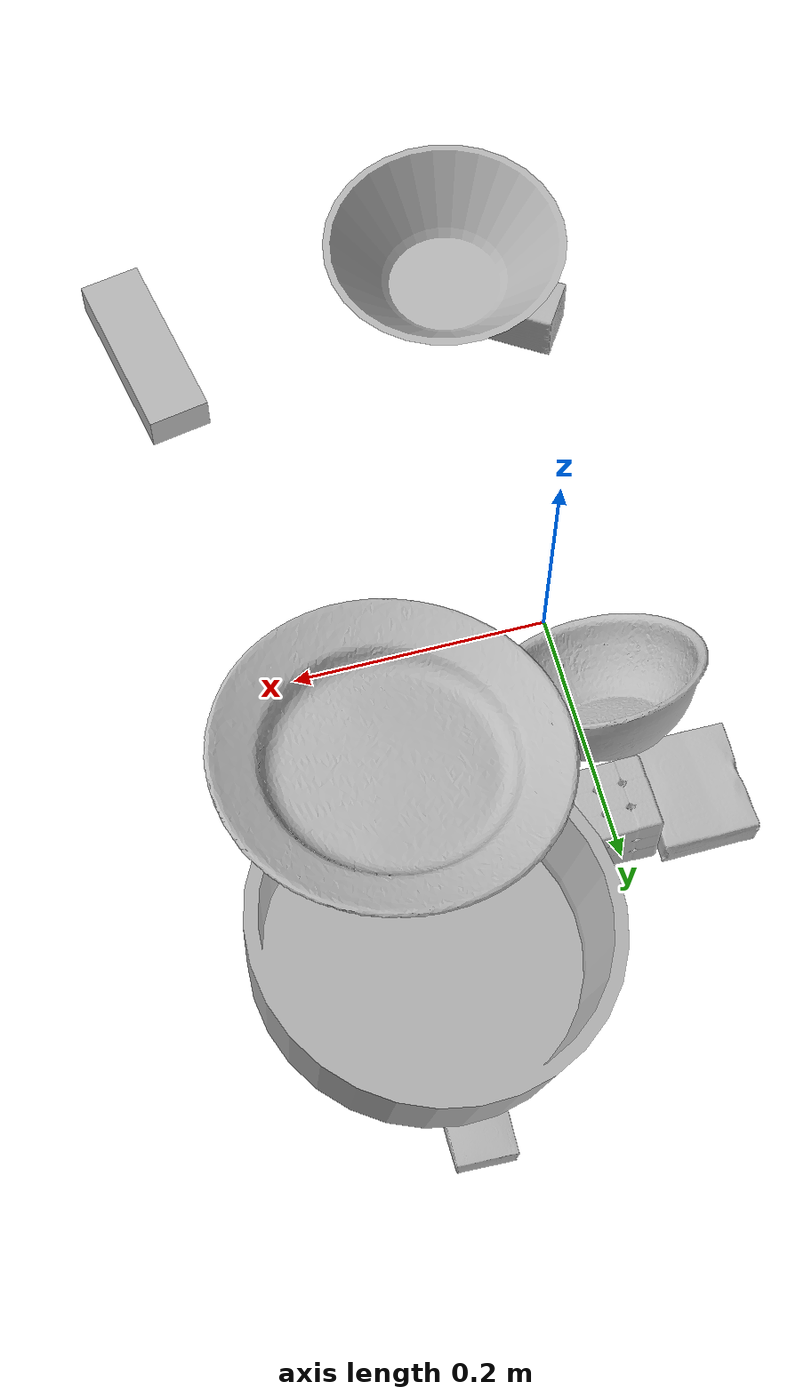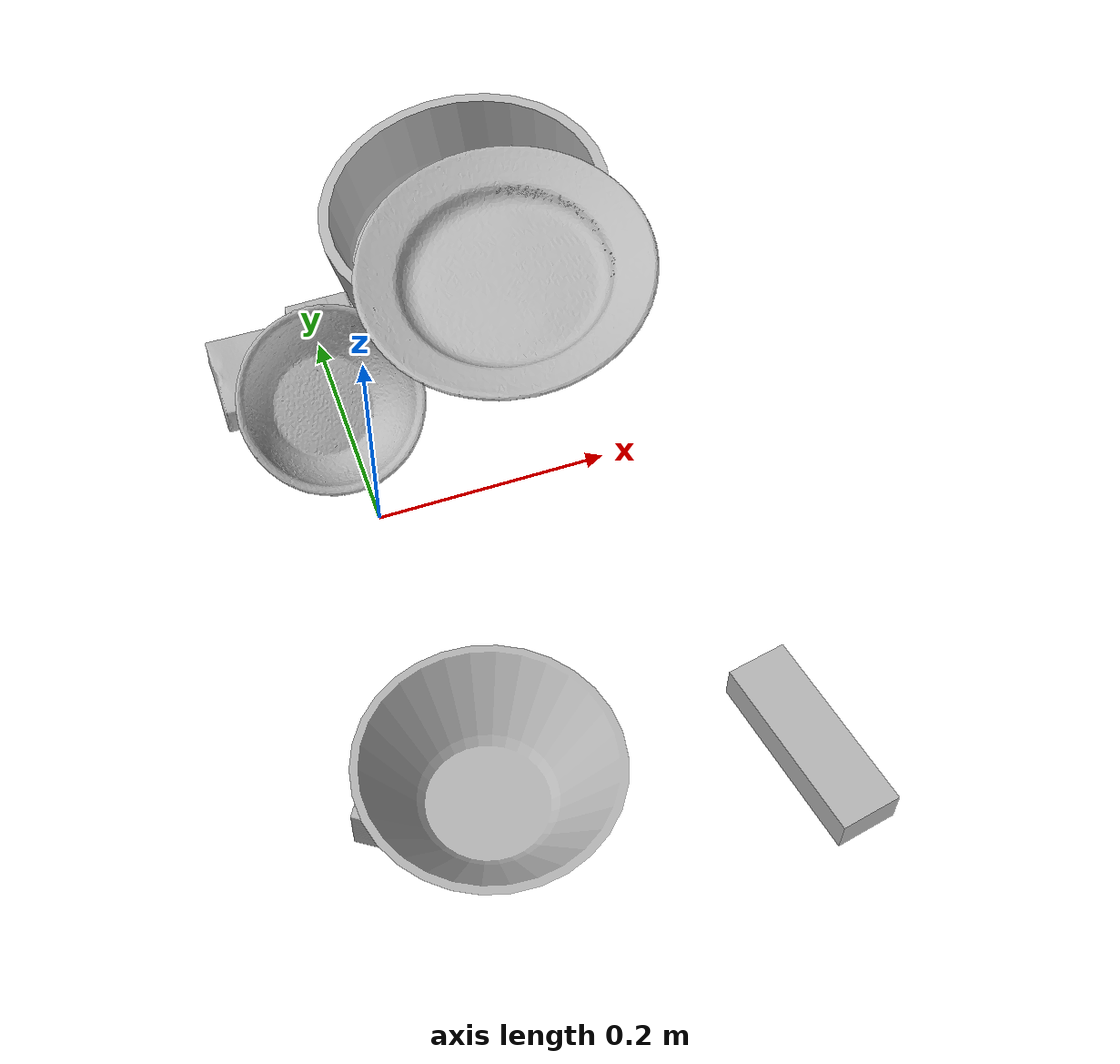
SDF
<sdf version="1.4">
  <world name="default">
    <light name="light1" type="point">
      <pose>0 0 1 0 0 0</pose>
      <diffuse>3 3 3 1</diffuse>
      <specular>3 3 3 1</specular>
    </light>
    <light name="light2" type="point">
      <pose>0 0.5 2 0 0 0</pose>
      <diffuse>1 1 1 1</diffuse>
      <specular>1 1 1 1</specular>
    </light>
    <light name="light3" type="point">
      <pose>0 0.5 2 0 0 0</pose>
      <diffuse>3 3 3 1</diffuse>
      <specular>3 3 3 1</specular>
    </light>
    <scene>
      <ambient>0.7 0.7 0.7</ambient>
    </scene>
    <model name="box1">
      <link name="link_box1">
        <collision name="default">
          <geometry>
            <mesh>
              <uri>model://gelatin_box/collision_meshes/collision.obj</uri>
              <scale>1.0 1.0 1.0</scale>
            </mesh>
          </geometry>
          <surface>
            <friction>
              <ode>
                <mu>0.5</mu>
                <mu2>0.5</mu2>
              </ode>
            </friction>
          <contact>
        <ode>
            <max_vel>0</max_vel>
            <min_depth>0.0001</min_depth>
            <kp>1e8</kp>
        </ode>
    </contact></surface>
        </collision>
        <visual name="default">
          <geometry>
            <mesh>
              <uri>model://gelatin_box/visual_meshes/visual.dae</uri>
              <scale>1.0 1.0 1.0</scale>
            </mesh>
          </geometry>
        </visual>
        <inertial>
          <mass>0.1979130208492279</mass>
          <pose>0.0004319618456065655 0.00011156871914863586 -0.0003640321083366871 -0.0010503722055948273 -0.004755818222760974 0.016440559471883928</pose>
          <inertia>
            <ixx>0.00013971045</ixx>
            <iyy>9.9794444e-05</iyy>
            <izz>0.00021267045</izz>
            <ixy>0</ixy>
            <ixz>0</ixz>
            <iyz>0</iyz>
          </inertia>
        </inertial>
      </link>
      <pose>-0.06312017887830734 0.17029017210006714 0.01516831573098898 0.005597386452177119 -0.007304525713996629 3.134286964338531</pose>
    </model>
    <model name="box11">
      <link name="link_box11">
        <collision name="default">
          <geometry>
            <mesh>
              <uri>model://sugar_box/collision_meshes/collision.obj</uri>
              <scale>0.5 0.5 0.5</scale>
            </mesh>
          </geometry>
          <surface>
            <friction>
              <ode>
                <mu>0.5</mu>
                <mu2>0.5</mu2>
              </ode>
            </friction>
          <contact>
        <ode>
            <max_vel>0</max_vel>
            <min_depth>0.0001</min_depth>
            <kp>1e8</kp>
        </ode>
    </contact></surface>
        </collision>
        <visual name="default">
          <geometry>
            <mesh>
              <uri>model://sugar_box/visual_meshes/visual.dae</uri>
              <scale>0.5 0.5 0.5</scale>
            </mesh>
          </geometry>
        </visual>
        <inertial>
          <mass>0.10992158949375153</mass>
          <pose>0.0005171863595023751 1.924554817378521e-05 -0.00018182402709499002 -0.00040462650409139634 0.0010506636387973133 0.002615378555960767</pose>
          <inertia>
            <ixx>2.2896586e-05</ixx>
            <iyy>7.400649e-05</iyy>
            <izz>8.8594585e-05</izz>
            <ixy>0</ixy>
            <ixz>0</ixz>
            <iyz>0</iyz>
          </inertia>
        </inertial>
      </link>
      <pose>0.20066407322883606 0.15246936678886414 0.012409115210175514 -0.09475802878611687 -0.003541895415815933 2.0992422371241783</pose>
    </model>
    <model name="box2">
      <link name="link_box2">
        <collision name="default">
          <geometry>
            <mesh>
              <uri>model://jenga/collision_meshes/collision.obj</uri>
              <scale>1.0 1.0 1.0</scale>
            </mesh>
          </geometry>
          <surface>
            <friction>
              <ode>
                <mu>0.5</mu>
                <mu2>0.5</mu2>
              </ode>
            </friction>
          <contact>
        <ode>
            <max_vel>0</max_vel>
            <min_depth>0.0001</min_depth>
            <kp>1e8</kp>
        </ode>
    </contact></surface>
        </collision>
        <visual name="default">
          <geometry>
            <mesh>
              <uri>model://jenga/visual_meshes/visual.dae</uri>
              <scale>1.0 1.0 1.0</scale>
            </mesh>
          </geometry>
        </visual>
        <inertial>
          <mass>0.12651896476745605</mass>
          <pose>-2.502855807051674e-07 -0.00010250010382151231 -4.0923401684267446e-05 0.0 -7.34215461761844e-07 0.0</pose>
          <inertia>
            <ixx>3.5010868e-05</ixx>
            <iyy>0.00023723267</iyy>
            <izz>0.00025326604</izz>
            <ixy>0</ixy>
            <ixz>0</ixz>
            <iyz>0</iyz>
          </inertia>
        </inertial>
      </link>
      <pose>0.25058600306510925 -0.3163380026817322 0.014999995008111 9.362299695614797e-09 5.651032022198213e-09 1.7638743426623114</pose>
    </model>
    <model name="box21">
      <link name="link_box21">
        <collision name="default">
          <geometry>
            <mesh>
              <uri>model://wood_block/collision_meshes/collision.obj</uri>
              <scale>0.5 0.5 0.5</scale>
            </mesh>
          </geometry>
          <surface>
            <friction>
              <ode>
                <mu>0.5</mu>
                <mu2>0.5</mu2>
              </ode>
            </friction>
          <contact>
        <ode>
            <max_vel>0</max_vel>
            <min_depth>0.0001</min_depth>
            <kp>1e8</kp>
        </ode>
    </contact></surface>
        </collision>
        <visual name="default">
          <geometry>
            <mesh>
              <uri>model://wood_block/visual_meshes/visual.dae</uri>
              <scale>0.5 0.5 0.5</scale>
            </mesh>
          </geometry>
        </visual>
        <inertial>
          <mass>0.17952100932598114</mass>
          <pose>-2.906657982748584e-06 -0.00028540476341731846 0.00013204291462898254 -0.052208472466385096 -0.005192695659959234 -0.0068613786899108485</pose>
          <inertia>
            <ixx>6.0056565e-05</ixx>
            <iyy>0.0001897187</iyy>
            <izz>0.00018900905</izz>
            <ixy>0</ixy>
            <ixz>0</ixz>
            <iyz>0</iyz>
          </inertia>
        </inertial>
      </link>
      <pose>-0.04441297426819801 -0.2868976891040802 0.02282291278243065 -8.574182677968239e-05 -2.2454434093240427e-05 2.561551817960254</pose>
    </model>
    <model name="box3">
      <link name="link_box3">
        <collision name="default">
          <geometry>
            <mesh>
              <uri>model://rubiks_cube/collision_meshes/collision.obj</uri>
              <scale>1.0 1.0 1.0</scale>
            </mesh>
          </geometry>
          <surface>
            <friction>
              <ode>
                <mu>0.5</mu>
                <mu2>0.5</mu2>
              </ode>
            </friction>
          <contact>
        <ode>
            <max_vel>0</max_vel>
            <min_depth>0.0001</min_depth>
            <kp>1e8</kp>
        </ode>
    </contact></surface>
        </collision>
        <visual name="default">
          <geometry>
            <mesh>
              <uri>model://rubiks_cube/visual_meshes/visual.dae</uri>
              <scale>1.0 1.0 1.0</scale>
            </mesh>
          </geometry>
        </visual>
        <inertial>
          <mass>0.2539031207561493</mass>
          <pose>2.6721041649580002e-05 5.2569666877388954e-05 -7.264316082000732e-06 -0.05467208428881645 -0.09814040742269707 -0.034455380154792534</pose>
          <inertia>
            <ixx>0.00014029852</ixx>
            <iyy>0.00013964424</iyy>
            <izz>0.00014146113</izz>
            <ixy>0</ixy>
            <ixz>0</ixz>
            <iyz>0</iyz>
          </inertia>
        </inertial>
      </link>
      <pose>0.0035609377082437277 0.17714577913284302 0.028678983449935913 -6.399213416514088e-06 -1.9425732531613116e-06 0.011850830239096315</pose>
    </model>
    <model name="box31">
      <link name="link_box31">
        <collision name="default">
          <geometry>
            <mesh>
              <uri>model://pudding_box/collision_meshes/collision.obj</uri>
              <scale>0.5 0.5 0.5</scale>
            </mesh>
          </geometry>
          <surface>
            <friction>
              <ode>
                <mu>0.5</mu>
                <mu2>0.5</mu2>
              </ode>
            </friction>
          <contact>
        <ode>
            <max_vel>0</max_vel>
            <min_depth>0.0001</min_depth>
            <kp>1e8</kp>
        </ode>
    </contact></surface>
        </collision>
        <visual name="default">
          <geometry>
            <mesh>
              <uri>model://pudding_box/visual_meshes/visual.dae</uri>
              <scale>0.5 0.5 0.5</scale>
            </mesh>
          </geometry>
        </visual>
        <inertial>
          <mass>0.030597222968935966</mass>
          <pose>0.00024474109522998333 0.00040339428232982755 -0.00025944135268218815 0.005213101792545572 -0.006603798718575614 0.020079825159656634</pose>
          <inertia>
            <ixx>8.6471455e-06</ixx>
            <iyy>5.8178607e-06</iyy>
            <izz>1.2769769e-05</izz>
            <ixy>0</ixy>
            <ixz>0</ixz>
            <iyz>0</iyz>
          </inertia>
        </inertial>
      </link>
      <pose>0.1572554111480713 0.367633581161499 0.010234885849058628 0.012223968545978481 -0.043358080053953404 -0.025439426348512477</pose>
    </model>
    <model name="plate1">
      <link name="link_plate1">
        <collision name="default">
          <geometry>
            <mesh>
              <uri>model://pan_tefal/collision_meshes/collision.obj</uri>
              <scale>1.0 1.0 1.0</scale>
            </mesh>
          </geometry>
          <surface>
            <friction>
              <ode>
                <mu>0.5</mu>
                <mu2>0.5</mu2>
              </ode>
            </friction>
          <contact>
        <ode>
            <max_vel>0</max_vel>
            <min_depth>0.0001</min_depth>
            <kp>1e8</kp>
        </ode>
    </contact></surface>
        </collision>
        <visual name="default">
          <geometry>
            <mesh>
              <uri>model://pan_tefal/visual_meshes/visual.dae</uri>
              <scale>1.0 1.0 1.0</scale>
            </mesh>
          </geometry>
        </visual>
        <inertial>
          <mass>1.6321053504943848</mass>
          <pose>-0.00018001697026193142 3.279276279499754e-05 -0.00851493887603283 0.0008190355512640809 -0.00033013448733331557 -0.33186498661790637</pose>
          <inertia>
            <ixx>0.011266344</ixx>
            <iyy>0.011338978</iyy>
            <izz>0.02073917</izz>
            <ixy>0</ixy>
            <ixz>0</ixz>
            <iyz>0</iyz>
          </inertia>
        </inertial>
      </link>
      <pose>0.15839286148548126 0.24463769793510437 0.058384787291288376 0.0171288458898958 -0.12943546460463543 -0.15655035814152465</pose>
    </model>
    <model name="bowl1">
      <link name="link_bowl1">
        <collision name="default">
          <geometry>
            <mesh>
              <uri>model://bowl/collision_meshes/collision.obj</uri>
              <scale>1.0 1.0 1.0</scale>
            </mesh>
          </geometry>
          <surface>
            <friction>
              <ode>
                <mu>0.5</mu>
                <mu2>0.5</mu2>
              </ode>
            </friction>
          <contact>
        <ode>
            <max_vel>0</max_vel>
            <min_depth>0.0001</min_depth>
            <kp>1e8</kp>
        </ode>
    </contact></surface>
        </collision>
        <visual name="default">
          <geometry>
            <mesh>
              <uri>model://bowl/visual_meshes/visual.dae</uri>
              <scale>1.0 1.0 1.0</scale>
            </mesh>
          </geometry>
        </visual>
        <inertial>
          <mass>0.08853479474782944</mass>
          <pose>0.0002044534485321492 -0.0010302085429430008 -0.0008042657864280045 -0.015764086220495594 0.014546762208611713 0.7140398935341641</pose>
          <inertia>
            <ixx>0.00020337135</ixx>
            <iyy>0.00019882726</iyy>
            <izz>0.00034214073</izz>
            <ixy>0</ixy>
            <ixz>0</ixz>
            <iyz>0</iyz>
          </inertia>
        </inertial>
      </link>
      <pose>-0.015449261292815208 0.09510339796543121 0.04865076765418053 -0.4578011833043332 0.4321830872671943 -2.3414396732782365</pose>
    </model>
    <model name="plate2">
      <link name="link_plate2">
        <collision name="default">
          <geometry>
            <mesh>
              <uri>model://plate/collision_meshes/collision.obj</uri>
              <scale>1.0 1.0 1.0</scale>
            </mesh>
          </geometry>
          <surface>
            <friction>
              <ode>
                <mu>0.5</mu>
                <mu2>0.5</mu2>
              </ode>
            </friction>
          <contact>
        <ode>
            <max_vel>0</max_vel>
            <min_depth>0.0001</min_depth>
            <kp>1e8</kp>
        </ode>
    </contact></surface>
        </collision>
        <visual name="default">
          <geometry>
            <mesh>
              <uri>model://plate/visual_meshes/visual.dae</uri>
              <scale>1.0 1.0 1.0</scale>
            </mesh>
          </geometry>
        </visual>
        <inertial>
          <mass>0.10531359910964966</mass>
          <pose>-0.0006044624024070799 0.00027825951110571623 -0.001056199660524726 0.0022187923451504944 -0.0032254757952566134 0.45260828030698763</pose>
          <inertia>
            <ixx>0.00049265905</ixx>
            <iyy>0.00048794702</iyy>
            <izz>0.0009635677</izz>
            <ixy>0</ixy>
            <ixz>0</ixz>
            <iyz>0</iyz>
          </inertia>
        </inertial>
      </link>
      <pose>0.1558896154165268 0.13024693727493286 0.1125759407877922 0.14621348069351317 0.047304735457686105 -0.9998561511740107</pose>
    </model>
    <model name="bowl2">
      <link name="link_bowl2">
        <collision name="default">
          <geometry>
            <mesh>
              <uri>model://bowl_a/collision_meshes/collision.obj</uri>
              <scale>1.0 1.0 1.0</scale>
            </mesh>
          </geometry>
          <surface>
            <friction>
              <ode>
                <mu>0.5</mu>
                <mu2>0.5</mu2>
              </ode>
            </friction>
          <contact>
        <ode>
            <max_vel>0</max_vel>
            <min_depth>0.0001</min_depth>
            <kp>1e8</kp>
        </ode>
    </contact></surface>
        </collision>
        <visual name="default">
          <geometry>
            <mesh>
              <uri>model://bowl_a/visual_meshes/visual.dae</uri>
              <scale>1.0 1.0 1.0</scale>
            </mesh>
          </geometry>
        </visual>
        <inertial>
          <mass>0.4180941581726074</mass>
          <pose>0.000278673687716946 4.731199442176148e-05 -0.0013765294570475817 -0.0009805326545729344 -0.001093820496942545 -0.19124076645491772</pose>
          <inertia>
            <ixx>0.0011903334</ixx>
            <iyy>0.0011976411</iyy>
            <izz>0.0021170534</izz>
            <ixy>0</ixy>
            <ixz>0</ixz>
            <iyz>0</iyz>
          </inertia>
        </inertial>
      </link>
      <pose>-0.00013021737686358392 -0.29942595958709717 0.07555869966745377 0.020389342392901584 0.03570112372722727 1.1998808309385838</pose>
    </model>
  <physics type="ode">
      <max_contacts>50</max_contacts>
      <ode>
        <solver>
          <type>quick</type>
          <iters>75</iters>
        </solver>
        <constraints>
          <contact_max_correcting_vel>0</contact_max_correcting_vel>
          <contact_surface_layer>0</contact_surface_layer>
        </constraints>
      </ode>
    </physics></world>
</sdf>
